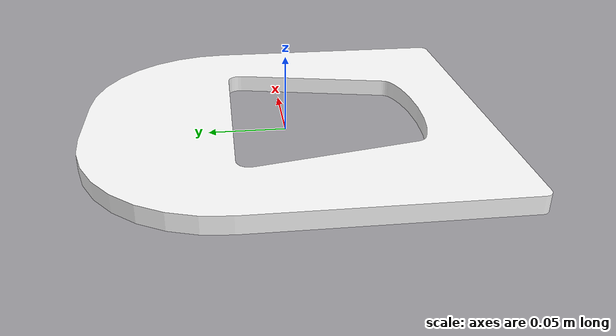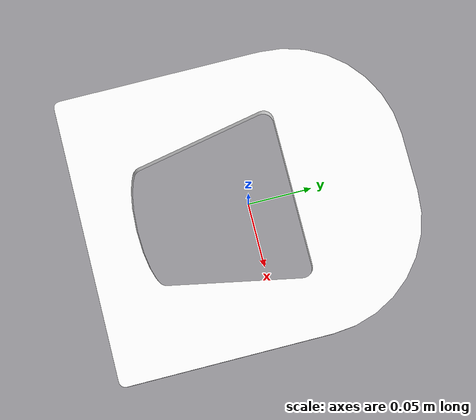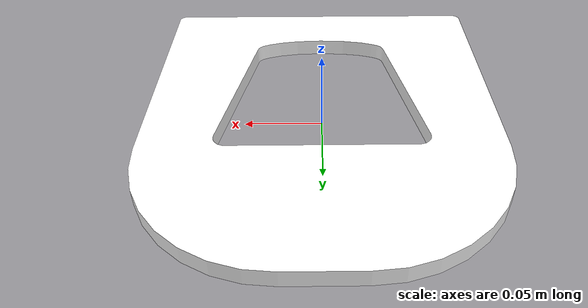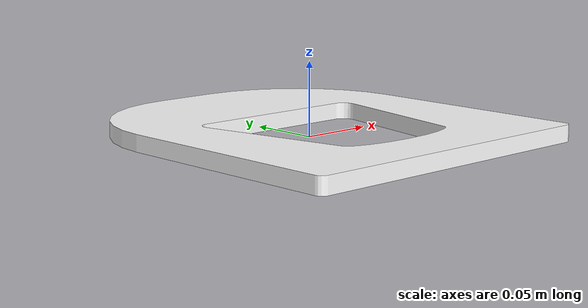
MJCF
<mujoco model="fr3_single_mount">
  <compiler angle="radian" assetdir="assets" autolimits="true"/>

  <asset>
    <mesh name="fr3_single_mount" file="fr3_single_mount.obj" inertia="shell"/>
    <texture name="fr3_single_mount_tex" type="2d" file="fr3_single_mount_albedotransparency.png"/>
    <texture name="fr3_single_mount_normal" type="2d" file="fr3_single_mount_normal.png" colorspace="linear"/>
    <material name="tex_fr3_single_mount">
      <layer texture="fr3_single_mount_tex" role="rgb"/>
      <layer texture="fr3_single_mount_normal" role="normal"/>
    </material>
  </asset>

  <default>
    <default class="fr3_single_mount">
      <default class="visual">
        <geom type="mesh" contype="0" conaffinity="0" group="2"/>
      </default>
      <default class="collision">
        <geom type="box" group="3"/>
      </default>
    </default>
  </default>

  <worldbody>
    <body name="fr3_single_mount" childclass="fr3_single_mount">
      <geom name="fr3_single_mount_visual" mesh="fr3_single_mount" material="tex_fr3_single_mount" class="visual"/>
      <geom name="fr3_single_mount_collision" size="0.1125 0.127485 0.0056555" pos="0 0 0.0056655" class="collision"/>
    </body>
  </worldbody>

</mujoco>
